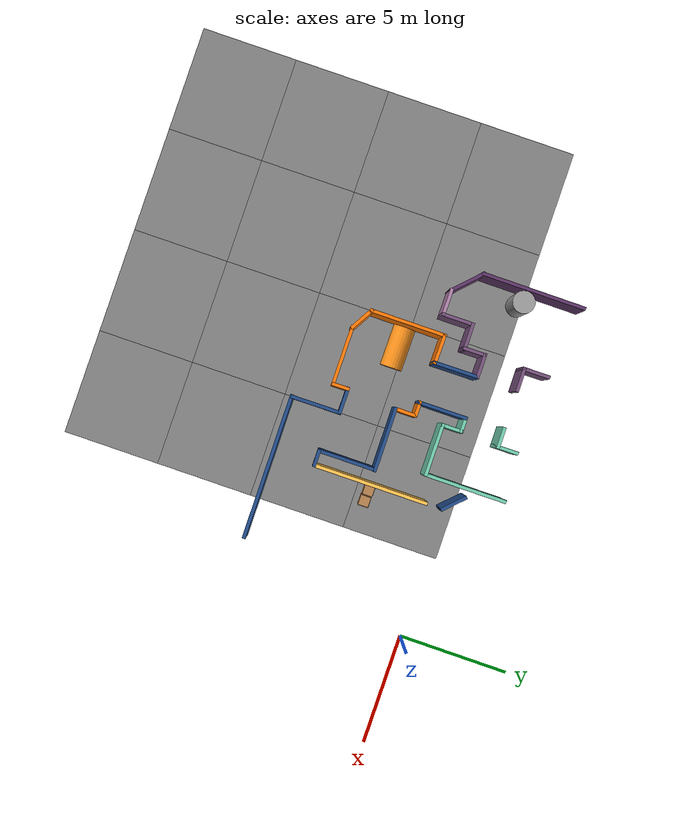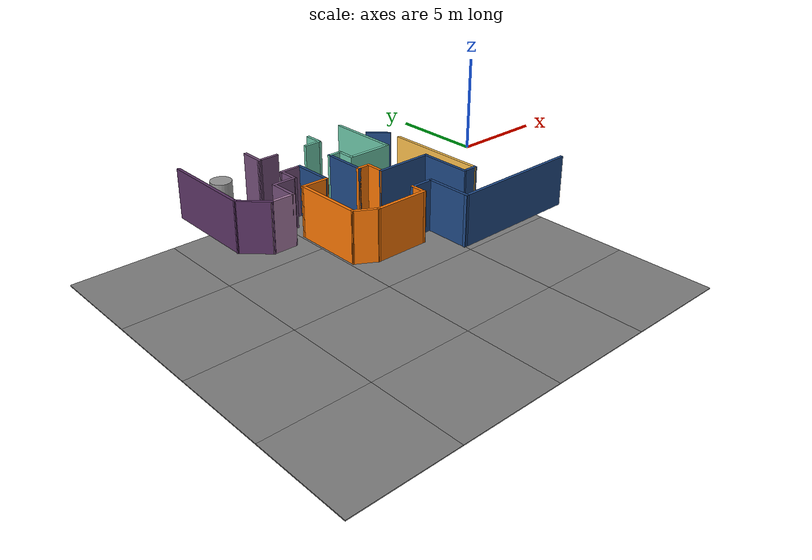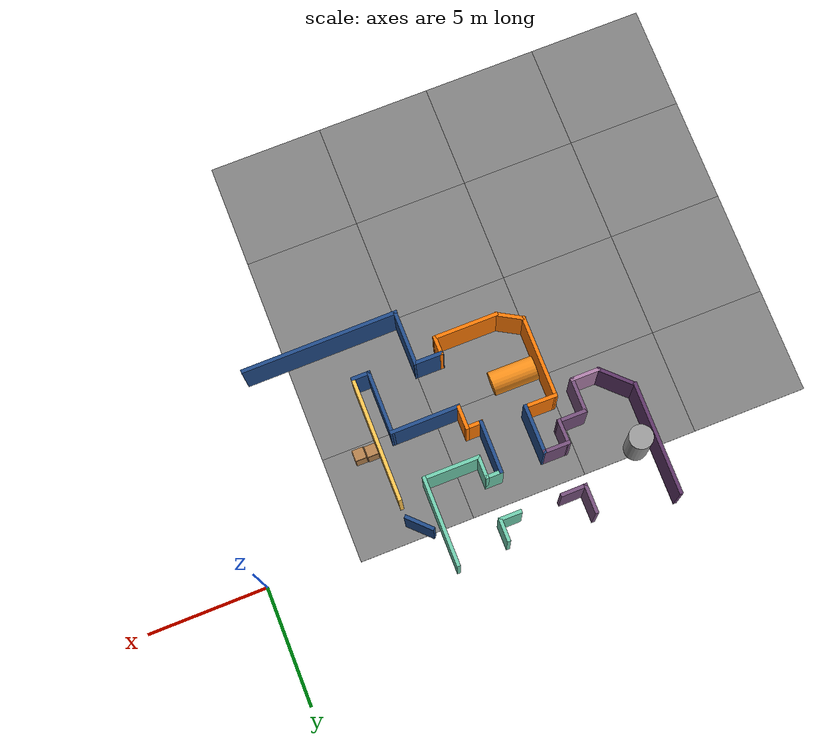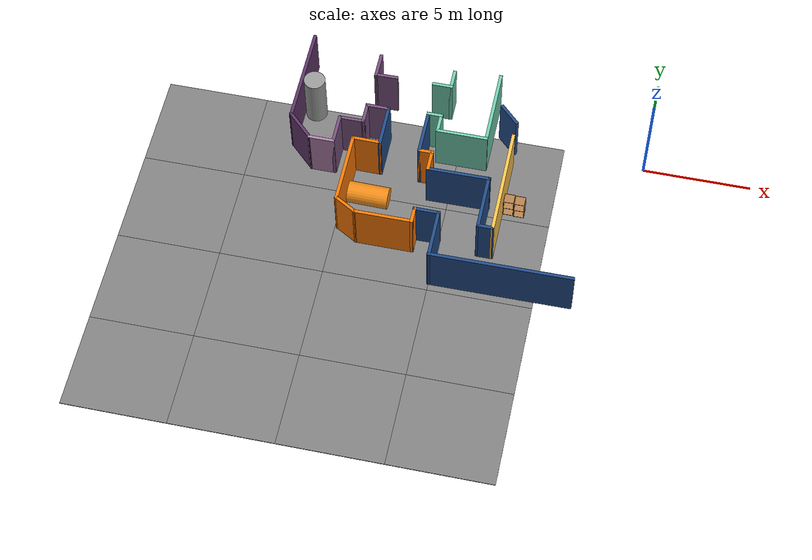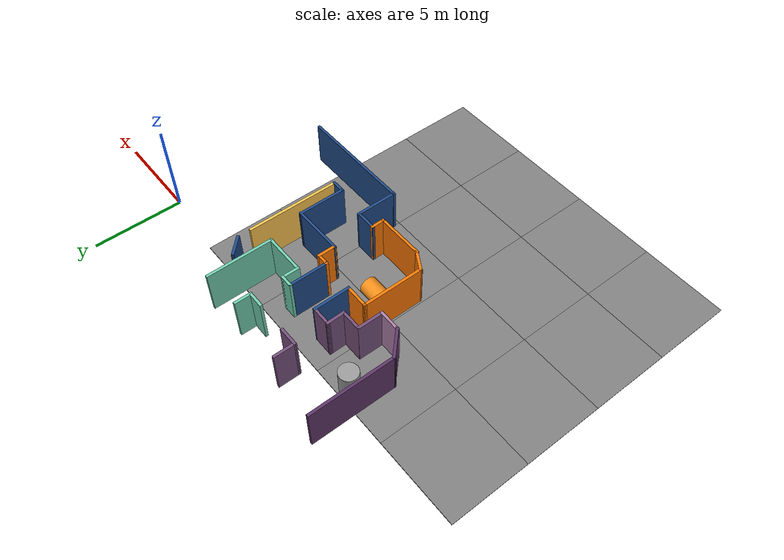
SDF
<sdf version="1.7">
 <world name="default">
  <model name="among_us_world">
   <pose>0.133216 -0.12311 0 0 -0 0</pose>
   <link name="Wall_103">
    <collision name="Wall_103_Collision">
     <geometry><box><size>1.25 0.15 2.5</size></box></geometry>
     <pose>0 0 1.25 0 -0 0</pose>
    </collision>
    <visual name="Wall_103_Visual">
     <pose>0 0 1.25 0 -0 0</pose>
     <geometry><box><size>1.25 0.15 2.5</size></box></geometry>
     <material>
      <ambient>0.12549 0.290196 0.529412 1</ambient>
      <diffuse>0.12549 0.290196 0.529412 1</diffuse>
      <specular>0.08 0.08 0.08 1</specular>
      <emissive>0 0 0 1</emissive>
      <pbr><metal><roughness>0.82</roughness><metalness>0</metalness></metal></pbr>
     </material>
     <meta><layer>0</layer></meta>
    </visual>
    <pose>-6.5956 0.241636 0 0 -0 -0.785398</pose>
   </link>
   <link name="Wall_145">
    <collision name="Wall_145_Collision">
     <geometry><box><size>5.25 0.15 2.5</size></box></geometry>
     <pose>0 0 1.25 0 -0 0</pose>
    </collision>
    <visual name="Wall_145_Visual">
     <pose>0 0 1.25 0 -0 0</pose>
     <geometry><box><size>5.25 0.15 2.5</size></box></geometry>
     <material>
      <ambient>1 0.764706 0.305882 1</ambient>
      <diffuse>1 0.764706 0.305882 1</diffuse>
      <specular>0.08 0.08 0.08 1</specular>
      <emissive>0 0 0 1</emissive>
      <pbr><metal><roughness>0.82</roughness><metalness>0</metalness></metal></pbr>
     </material>
     <meta><layer>0</layer></meta>
    </visual>
    <pose>-6.21277 -3.45528 0 0 -0 1.5708</pose>
   </link>
   <link name="Wall_160">
    <collision name="Wall_160_Collision">
     <geometry><box><size>0.797757 0.15 2.5</size></box></geometry>
     <pose>0 0 1.25 0 -0 0</pose>
    </collision>
    <visual name="Wall_160_Visual">
     <pose>0 0 1.25 0 -0 0</pose>
     <geometry><box><size>0.797757 0.15 2.5</size></box></geometry>
     <material>
      <ambient>0.12549 0.290196 0.529412 1</ambient>
      <diffuse>0.12549 0.290196 0.529412 1</diffuse>
      <specular>0.08 0.08 0.08 1</specular>
      <emissive>0 0 0 1</emissive>
      <pbr><metal><roughness>0.82</roughness><metalness>0</metalness></metal></pbr>
     </material>
     <meta><layer>0</layer></meta>
    </visual>
    <pose>-6.53682 -6.00509 0 0 -0 3.14101</pose>
   </link>
   <link name="Wall_161">
    <collision name="Wall_161_Collision">
     <geometry><box><size>2.70224 0.15 2.5</size></box></geometry>
     <pose>0 0 1.25 0 -0 0</pose>
    </collision>
    <visual name="Wall_161_Visual">
     <pose>0 0 1.25 0 -0 0</pose>
     <geometry><box><size>2.70224 0.15 2.5</size></box></geometry>
     <material>
      <ambient>0.12549 0.290196 0.529412 1</ambient>
      <diffuse>0.12549 0.290196 0.529412 1</diffuse>
      <specular>0.08 0.08 0.08 1</specular>
      <emissive>0 0 0 1</emissive>
      <pbr><metal><roughness>0.82</roughness><metalness>0</metalness></metal></pbr>
     </material>
     <meta><layer>0</layer></meta>
    </visual>
    <pose>-6.87644 -4.72879 0 0 -0 1.5708</pose>
   </link>
   <link name="Wall_162">
    <collision name="Wall_162_Collision">
     <geometry><box><size>2.95229 0.15 2.5</size></box></geometry>
     <pose>0 0 1.25 0 -0 0</pose>
    </collision>
    <visual name="Wall_162_Visual">
     <pose>0 0 1.25 0 -0 0</pose>
     <geometry><box><size>2.95229 0.15 2.5</size></box></geometry>
     <material>
      <ambient>0.12549 0.290196 0.529412 1</ambient>
      <diffuse>0.12549 0.290196 0.529412 1</diffuse>
      <specular>0.08 0.08 0.08 1</specular>
      <emissive>0 0 0 1</emissive>
      <pbr><metal><roughness>0.82</roughness><metalness>0</metalness></metal></pbr>
     </material>
     <meta><layer>0</layer></meta>
    </visual>
    <pose>-8.262 -3.46044 0 0 -0 -3.13604</pose>
   </link>
   <link name="Wall_163">
    <collision name="Wall_163_Collision">
     <geometry><box><size>1.04776 0.15 2.5</size></box></geometry>
     <pose>0 0 1.25 0 -0 0</pose>
    </collision>
    <visual name="Wall_163_Visual">
     <pose>0 0 1.25 0 -0 0</pose>
     <geometry><box><size>1.04776 0.15 2.5</size></box></geometry>
     <material>
      <ambient>0.996078 0.47451 0.0196078 1</ambient>
      <diffuse>0.996078 0.47451 0.0196078 1</diffuse>
      <specular>0.08 0.08 0.08 1</specular>
      <emissive>0 0 0 1</emissive>
      <pbr><metal><roughness>0.82</roughness><metalness>0</metalness></metal></pbr>
     </material>
     <meta><layer>0</layer></meta>
    </visual>
    <pose>-9.66312 -3.00378 0 0 -0 1.5708</pose>
   </link>
   <link name="Wall_164">
    <collision name="Wall_164_Collision">
     <geometry><box><size>0.75 0.15 2.5</size></box></geometry>
     <pose>0 0 1.25 0 -0 0</pose>
    </collision>
    <visual name="Wall_164_Visual">
     <pose>0 0 1.25 0 -0 0</pose>
     <geometry><box><size>0.75 0.15 2.5</size></box></geometry>
     <material>
      <ambient>0.996078 0.47451 0.0196078 1</ambient>
      <diffuse>0.996078 0.47451 0.0196078 1</diffuse>
      <specular>0.08 0.08 0.08 1</specular>
      <emissive>0 0 0 1</emissive>
      <pbr><metal><roughness>0.82</roughness><metalness>0</metalness></metal></pbr>
     </material>
     <meta><layer>0</layer></meta>
    </visual>
    <pose>-9.96312 -2.55491 0 0 -0 3.14159</pose>
   </link>
   <link name="Wall_165">
    <collision name="Wall_165_Collision">
     <geometry><box><size>2.25 0.15 2.5</size></box></geometry>
     <pose>0 0 1.25 0 -0 0</pose>
    </collision>
    <visual name="Wall_165_Visual">
     <pose>0 0 1.25 0 -0 0</pose>
     <geometry><box><size>2.25 0.15 2.5</size></box></geometry>
     <material>
      <ambient>0.12549 0.290196 0.529412 1</ambient>
      <diffuse>0.12549 0.290196 0.529412 1</diffuse>
      <specular>0.08 0.08 0.08 1</specular>
      <emissive>0 0 0 1</emissive>
      <pbr><metal><roughness>0.82</roughness><metalness>0</metalness></metal></pbr>
     </material>
     <meta><layer>0</layer></meta>
    </visual>
    <pose>-10.2631 -1.50491 0 0 -0 1.5708</pose>
   </link>
   <link name="Wall_166">
    <collision name="Wall_166_Collision">
     <geometry><box><size>0.75 0.15 2.5</size></box></geometry>
     <pose>0 0 1.25 0 -0 0</pose>
    </collision>
    <visual name="Wall_166_Visual">
     <pose>0 0 1.25 0 -0 0</pose>
     <geometry><box><size>0.75 0.15 2.5</size></box></geometry>
     <material>
      <ambient>0.435294 0.796078 0.67451 1</ambient>
      <diffuse>0.435294 0.796078 0.67451 1</diffuse>
      <specular>0.08 0.08 0.08 1</specular>
      <emissive>0 0 0 1</emissive>
      <pbr><metal><roughness>0.82</roughness><metalness>0</metalness></metal></pbr>
     </material>
     <meta><layer>0</layer></meta>
    </visual>
    <pose>-9.96312 -0.454906 0 0 -0 0</pose>
   </link>
   <link name="Wall_167">
    <collision name="Wall_167_Collision">
     <geometry><box><size>1 0.15 2.5</size></box></geometry>
     <pose>0 0 1.25 0 -0 0</pose>
    </collision>
    <visual name="Wall_167_Visual">
     <pose>0 0 1.25 0 -0 0</pose>
     <geometry><box><size>1 0.15 2.5</size></box></geometry>
     <material>
      <ambient>0.435294 0.796078 0.67451 1</ambient>
      <diffuse>0.435294 0.796078 0.67451 1</diffuse>
      <specular>0.08 0.08 0.08 1</specular>
      <emissive>0 0 0 1</emissive>
      <pbr><metal><roughness>0.82</roughness><metalness>0</metalness></metal></pbr>
     </material>
     <meta><layer>0</layer></meta>
    </visual>
    <pose>-9.66312 -0.879906 0 0 -0 -1.5708</pose>
   </link>
   <link name="Wall_168">
    <collision name="Wall_168_Collision">
     <geometry><box><size>2.40666 0.15 2.5</size></box></geometry>
     <pose>0 0 1.25 0 -0 0</pose>
    </collision>
    <visual name="Wall_168_Visual">
     <pose>0 0 1.25 0 -0 0</pose>
     <geometry><box><size>2.40666 0.15 2.5</size></box></geometry>
     <material>
      <ambient>0.435294 0.796078 0.67451 1</ambient>
      <diffuse>0.435294 0.796078 0.67451 1</diffuse>
      <specular>0.08 0.08 0.08 1</specular>
      <emissive>0 0 0 1</emissive>
      <pbr><metal><roughness>0.82</roughness><metalness>0</metalness></metal></pbr>
     </material>
     <meta><layer>0</layer></meta>
    </visual>
    <pose>-8.53479 -1.30491 0 0 -0 0</pose>
   </link>
   <link name="Wall_169">
    <collision name="Wall_169_Collision">
     <geometry><box><size>3.75 0.15 2.5</size></box></geometry>
     <pose>0 0 1.25 0 -0 0</pose>
    </collision>
    <visual name="Wall_169_Visual">
     <pose>0 0 1.25 0 -0 0</pose>
     <geometry><box><size>3.75 0.15 2.5</size></box></geometry>
     <material>
      <ambient>0.435294 0.796078 0.67451 1</ambient>
      <diffuse>0.435294 0.796078 0.67451 1</diffuse>
      <specular>0.08 0.08 0.08 1</specular>
      <emissive>0 0 0 1</emissive>
      <pbr><metal><roughness>0.82</roughness><metalness>0</metalness></metal></pbr>
     </material>
     <meta><layer>0</layer></meta>
    </visual>
    <pose>-7.39091 0.495094 0 0 -0 1.5708</pose>
   </link>
   <link name="Wall_173">
    <collision name="Wall_173_Collision">
     <geometry><box><size>1 0.15 2.5</size></box></geometry>
     <pose>0 0 1.25 0 -0 0</pose>
    </collision>
    <visual name="Wall_173_Visual">
     <pose>0 0 1.25 0 -0 0</pose>
     <geometry><box><size>1 0.15 2.5</size></box></geometry>
     <material>
      <ambient>0.435294 0.796078 0.67451 1</ambient>
      <diffuse>0.435294 0.796078 0.67451 1</diffuse>
      <specular>0.08 0.08 0.08 1</specular>
      <emissive>0 0 0 1</emissive>
      <pbr><metal><roughness>0.82</roughness><metalness>0</metalness></metal></pbr>
     </material>
     <meta><layer>0</layer></meta>
    </visual>
    <pose>-9.54198 1.69332 0 0 -0 -1.5708</pose>
   </link>
   <link name="Wall_174">
    <collision name="Wall_174_Collision">
     <geometry><box><size>0.969112 0.15 2.5</size></box></geometry>
     <pose>0 0 1.25 0 -0 0</pose>
    </collision>
    <visual name="Wall_174_Visual">
     <pose>0 0 1.25 0 -0 0</pose>
     <geometry><box><size>0.969112 0.15 2.5</size></box></geometry>
     <material>
      <ambient>0.435294 0.796078 0.67451 1</ambient>
      <diffuse>0.435294 0.796078 0.67451 1</diffuse>
      <specular>0.08 0.08 0.08 1</specular>
      <emissive>0 0 0 1</emissive>
      <pbr><metal><roughness>0.82</roughness><metalness>0</metalness></metal></pbr>
     </material>
     <meta><layer>0</layer></meta>
    </visual>
    <pose>-9.95154 1.26832 0 0 -0 -3.14159</pose>
   </link>
   <link name="Wall_208">
    <collision name="Wall_208_Collision">
     <geometry><box><size>1.25 0.15 2.5</size></box></geometry>
     <pose>0 0 1.25 0 -0 0</pose>
    </collision>
    <visual name="Wall_208_Visual">
     <pose>0 0 1.25 0 -0 0</pose>
     <geometry><box><size>1.25 0.15 2.5</size></box></geometry>
     <material>
      <ambient>0.458824 0.313726 0.482353 1</ambient>
      <diffuse>0.458824 0.313726 0.482353 1</diffuse>
      <specular>0.08 0.08 0.08 1</specular>
      <emissive>0 0 0 1</emissive>
      <pbr><metal><roughness>0.82</roughness><metalness>0</metalness></metal></pbr>
     </material>
     <meta><layer>0</layer></meta>
    </visual>
    <pose>-13.1077 1.80265 0 0 -0 -1.57068</pose>
   </link>
   <link name="Wall_209">
    <collision name="Wall_209_Collision">
     <geometry><box><size>1.11978 0.15 2.5</size></box></geometry>
     <pose>0 0 1.25 0 -0 0</pose>
    </collision>
    <visual name="Wall_209_Visual">
     <pose>0 0 1.25 0 -0 0</pose>
     <geometry><box><size>1.11978 0.15 2.5</size></box></geometry>
     <material>
      <ambient>0.458824 0.313726 0.482353 1</ambient>
      <diffuse>0.458824 0.313726 0.482353 1</diffuse>
      <specular>0.08 0.08 0.08 1</specular>
      <emissive>0 0 0 1</emissive>
      <pbr><metal><roughness>0.82</roughness><metalness>0</metalness></metal></pbr>
     </material>
     <meta><layer>0</layer></meta>
    </visual>
    <pose>-12.6228 1.25736 0 0 -0 0.009865</pose>
   </link>
   <link name="Wall_46">
    <collision name="Wall_46_Collision">
     <geometry><box><size>4.75003 0.15 2.5</size></box></geometry>
     <pose>0 0 1.25 0 -0 0</pose>
    </collision>
    <visual name="Wall_46_Visual">
     <pose>0 0 1.25 0 -0 0</pose>
     <geometry><box><size>4.75003 0.15 2.5</size></box></geometry>
     <material>
      <ambient>0.360784 0.207843 0.4 1</ambient>
      <diffuse>0.360784 0.207843 0.4 1</diffuse>
      <specular>0.08 0.08 0.08 1</specular>
      <emissive>0 0 0 1</emissive>
      <pbr><metal><roughness>0.82</roughness><metalness>0</metalness></metal></pbr>
     </material>
     <meta><layer>0</layer></meta>
    </visual>
    <pose>-16.4358 0.555717 0 0 -0 -1.57428</pose>
   </link>
   <link name="Wall_47">
    <collision name="Wall_47_Collision">
     <geometry><box><size>1.7065 0.15 2.5</size></box></geometry>
     <pose>0 0 1.25 0 -0 0</pose>
    </collision>
    <visual name="Wall_47_Visual">
     <pose>0 0 1.25 0 -0 0</pose>
     <geometry><box><size>1.7065 0.15 2.5</size></box></geometry>
     <material>
      <ambient>0.360784 0.207843 0.4 1</ambient>
      <diffuse>0.360784 0.207843 0.4 1</diffuse>
      <specular>0.08 0.08 0.08 1</specular>
      <emissive>0 0 0 1</emissive>
      <pbr><metal><roughness>0.82</roughness><metalness>0</metalness></metal></pbr>
     </material>
     <meta><layer>0</layer></meta>
    </visual>
    <pose>-15.8858 -2.28678 0 0 -0 -0.771315</pose>
   </link>
   <link name="Wall_48">
    <collision name="Wall_48_Collision">
     <geometry><box><size>1.266 0.15 2.5</size></box></geometry>
     <pose>0 0 1.25 0 -0 0</pose>
    </collision>
    <visual name="Wall_48_Visual">
     <pose>0 0 1.25 0 -0 0</pose>
     <geometry><box><size>1.266 0.15 2.5</size></box></geometry>
     <material>
      <ambient>0.678431 0.498039 0.658824 1</ambient>
      <diffuse>0.678431 0.498039 0.658824 1</diffuse>
      <specular>0.08 0.08 0.08 1</specular>
      <emissive>0 0 0 1</emissive>
      <pbr><metal><roughness>0.82</roughness><metalness>0</metalness></metal></pbr>
     </material>
     <meta><layer>0</layer></meta>
    </visual>
    <pose>-14.7698 -2.82928 0 0 -0 0</pose>
   </link>
   <link name="Wall_49">
    <collision name="Wall_49_Collision">
     <geometry><box><size>1.5 0.15 2.5</size></box></geometry>
     <pose>0 0 1.25 0 -0 0</pose>
    </collision>
    <visual name="Wall_49_Visual">
     <pose>0 0 1.25 0 -0 0</pose>
     <geometry><box><size>1.5 0.15 2.5</size></box></geometry>
     <material>
      <ambient>0.458824 0.313726 0.482353 1</ambient>
      <diffuse>0.458824 0.313726 0.482353 1</diffuse>
      <specular>0.08 0.08 0.08 1</specular>
      <emissive>0 0 0 1</emissive>
      <pbr><metal><roughness>0.82</roughness><metalness>0</metalness></metal></pbr>
     </material>
     <meta><layer>0</layer></meta>
    </visual>
    <pose>-14.2118 -2.15428 0 0 -0 1.5708</pose>
   </link>
   <link name="Wall_50">
    <collision name="Wall_50_Collision">
     <geometry><box><size>1.25 0.15 2.5</size></box></geometry>
     <pose>0 0 1.25 0 -0 0</pose>
    </collision>
    <visual name="Wall_50_Visual">
     <pose>0 0 1.25 0 -0 0</pose>
     <geometry><box><size>1.25 0.15 2.5</size></box></geometry>
     <material>
      <ambient>0.458824 0.313726 0.482353 1</ambient>
      <diffuse>0.458824 0.313726 0.482353 1</diffuse>
      <specular>0.08 0.08 0.08 1</specular>
      <emissive>0 0 0 1</emissive>
      <pbr><metal><roughness>0.82</roughness><metalness>0</metalness></metal></pbr>
     </material>
     <meta><layer>0</layer></meta>
    </visual>
    <pose>-13.6618 -1.47928 0 0 -0 0</pose>
   </link>
   <link name="Wall_51">
    <collision name="Wall_51_Collision">
     <geometry><box><size>1.07621 0.15 2.5</size></box></geometry>
     <pose>0 0 1.25 0 -0 0</pose>
    </collision>
    <visual name="Wall_51_Visual">
     <pose>0 0 1.25 0 -0 0</pose>
     <geometry><box><size>1.07621 0.15 2.5</size></box></geometry>
     <material>
      <ambient>0.458824 0.313726 0.482353 1</ambient>
      <diffuse>0.458824 0.313726 0.482353 1</diffuse>
      <specular>0.08 0.08 0.08 1</specular>
      <emissive>0 0 0 1</emissive>
      <pbr><metal><roughness>0.82</roughness><metalness>0</metalness></metal></pbr>
     </material>
     <meta><layer>0</layer></meta>
    </visual>
    <pose>-13.1188 -1.01578 0 0 -0 1.5859</pose>
   </link>
   <link name="Wall_52">
    <collision name="Wall_52_Collision">
     <geometry><box><size>1.1411 0.15 2.5</size></box></geometry>
     <pose>0 0 1.25 0 -0 0</pose>
    </collision>
    <visual name="Wall_52_Visual">
     <pose>0 0 1.25 0 -0 0</pose>
     <geometry><box><size>1.1411 0.15 2.5</size></box></geometry>
     <material>
      <ambient>0.458824 0.313726 0.482353 1</ambient>
      <diffuse>0.458824 0.313726 0.482353 1</diffuse>
      <specular>0.08 0.08 0.08 1</specular>
      <emissive>0 0 0 1</emissive>
      <pbr><metal><roughness>0.82</roughness><metalness>0</metalness></metal></pbr>
     </material>
     <meta><layer>0</layer></meta>
    </visual>
    <pose>-12.6302 -0.553561 0 0 -0 -0.00258</pose>
   </link>
   <link name="Wall_53">
    <collision name="Wall_53_Collision">
     <geometry><box><size>2.08956 0.15 2.5</size></box></geometry>
     <pose>0 0 1.25 0 -0 0</pose>
    </collision>
    <visual name="Wall_53_Visual">
     <pose>0 0 1.25 0 -0 0</pose>
     <geometry><box><size>2.08956 0.15 2.5</size></box></geometry>
     <material>
      <ambient>0.12549 0.290196 0.529412 1</ambient>
      <diffuse>0.12549 0.290196 0.529412 1</diffuse>
      <specular>0.08 0.08 0.08 1</specular>
      <emissive>0 0 0 1</emissive>
      <pbr><metal><roughness>0.82</roughness><metalness>0</metalness></metal></pbr>
     </material>
     <meta><layer>0</layer></meta>
    </visual>
    <pose>-12.1122 -1.5246 0 0 -0 -1.56365</pose>
   </link>
   <link name="Wall_54">
    <collision name="Wall_54_Collision">
     <geometry><box><size>1.3912 0.15 2.5</size></box></geometry>
     <pose>0 0 1.25 0 -0 0</pose>
    </collision>
    <visual name="Wall_54_Visual">
     <pose>0 0 1.25 0 -0 0</pose>
     <geometry><box><size>1.3912 0.15 2.5</size></box></geometry>
     <material>
      <ambient>0.996078 0.47451 0.0196078 1</ambient>
      <diffuse>0.996078 0.47451 0.0196078 1</diffuse>
      <specular>0.08 0.08 0.08 1</specular>
      <emissive>0 0 0 1</emissive>
      <pbr><metal><roughness>0.82</roughness><metalness>0</metalness></metal></pbr>
     </material>
     <meta><layer>0</layer></meta>
    </visual>
    <pose>-12.7414 -2.48657 0 0 -0 3.12906</pose>
   </link>
   <link name="Wall_55">
    <collision name="Wall_55_Collision">
     <geometry><box><size>3.5 0.15 2.5</size></box></geometry>
     <pose>0 0 1.25 0 -0 0</pose>
    </collision>
    <visual name="Wall_55_Visual">
     <pose>0 0 1.25 0 -0 0</pose>
     <geometry><box><size>3.5 0.15 2.5</size></box></geometry>
     <material>
      <ambient>0.996078 0.47451 0.0196078 1</ambient>
      <diffuse>0.996078 0.47451 0.0196078 1</diffuse>
      <specular>0.08 0.08 0.08 1</specular>
      <emissive>0 0 0 1</emissive>
      <pbr><metal><roughness>0.82</roughness><metalness>0</metalness></metal></pbr>
     </material>
     <meta><layer>0</layer></meta>
    </visual>
    <pose>-13.3619 -4.15379 0 0 -0 -1.5708</pose>
   </link>
   <link name="Wall_56">
    <collision name="Wall_56_Collision">
     <geometry><box><size>1.25 0.15 2.5</size></box></geometry>
     <pose>0 0 1.25 0 -0 0</pose>
    </collision>
    <visual name="Wall_56_Visual">
     <pose>0 0 1.25 0 -0 0</pose>
     <geometry><box><size>1.25 0.15 2.5</size></box></geometry>
     <material>
      <ambient>0.996078 0.47451 0.0196078 1</ambient>
      <diffuse>0.996078 0.47451 0.0196078 1</diffuse>
      <specular>0.08 0.08 0.08 1</specular>
      <emissive>0 0 0 1</emissive>
      <pbr><metal><roughness>0.82</roughness><metalness>0</metalness></metal></pbr>
     </material>
     <meta><layer>0</layer></meta>
    </visual>
    <pose>-12.8856 -6.10379 0 0 -0 -0.523599</pose>
   </link>
   <link name="Wall_57">
    <collision name="Wall_57_Collision">
     <geometry><box><size>2.75 0.15 2.5</size></box></geometry>
     <pose>0 0 1.25 0 -0 0</pose>
    </collision>
    <visual name="Wall_57_Visual">
     <pose>0 0 1.25 0 -0 0</pose>
     <geometry><box><size>2.75 0.15 2.5</size></box></geometry>
     <material>
      <ambient>0.996078 0.47451 0.0196078 1</ambient>
      <diffuse>0.996078 0.47451 0.0196078 1</diffuse>
      <specular>0.08 0.08 0.08 1</specular>
      <emissive>0 0 0 1</emissive>
      <pbr><metal><roughness>0.82</roughness><metalness>0</metalness></metal></pbr>
     </material>
     <meta><layer>0</layer></meta>
    </visual>
    <pose>-11.1093 -6.37879 0 0 -0 0</pose>
   </link>
   <link name="Wall_58">
    <collision name="Wall_58_Collision">
     <geometry><box><size>0.828826 0.15 2.5</size></box></geometry>
     <pose>0 0 1.25 0 -0 0</pose>
    </collision>
    <visual name="Wall_58_Visual">
     <pose>0 0 1.25 0 -0 0</pose>
     <geometry><box><size>0.828826 0.15 2.5</size></box></geometry>
     <material>
      <ambient>0.996078 0.47451 0.0196078 1</ambient>
      <diffuse>0.996078 0.47451 0.0196078 1</diffuse>
      <specular>0.08 0.08 0.08 1</specular>
      <emissive>0 0 0 1</emissive>
      <pbr><metal><roughness>0.82</roughness><metalness>0</metalness></metal></pbr>
     </material>
     <meta><layer>0</layer></meta>
    </visual>
    <pose>-9.81221 -6.03984 0 0 -0 1.57942</pose>
   </link>
   <link name="Wall_59">
    <collision name="Wall_59_Collision">
     <geometry><box><size>1.25 0.15 2.5</size></box></geometry>
     <pose>0 0 1.25 0 -0 0</pose>
    </collision>
    <visual name="Wall_59_Visual">
     <pose>0 0 1.25 0 -0 0</pose>
     <geometry><box><size>1.25 0.15 2.5</size></box></geometry>
     <material>
      <ambient>0.12549 0.290196 0.529412 1</ambient>
      <diffuse>0.12549 0.290196 0.529412 1</diffuse>
      <specular>0.08 0.08 0.08 1</specular>
      <emissive>0 0 0 1</emissive>
      <pbr><metal><roughness>0.82</roughness><metalness>0</metalness></metal></pbr>
     </material>
     <meta><layer>0</layer></meta>
    </visual>
    <pose>-9.27098 -5.70088 0 0 -0 0</pose>
   </link>
   <link name="Wall_60">
    <collision name="Wall_60_Collision">
     <geometry><box><size>2.3556 0.15 2.5</size></box></geometry>
     <pose>0 0 1.25 0 -0 0</pose>
    </collision>
    <visual name="Wall_60_Visual">
     <pose>0 0 1.25 0 -0 0</pose>
     <geometry><box><size>2.3556 0.15 2.5</size></box></geometry>
     <material>
      <ambient>0.12549 0.290196 0.529412 1</ambient>
      <diffuse>0.12549 0.290196 0.529412 1</diffuse>
      <specular>0.08 0.08 0.08 1</specular>
      <emissive>0 0 0 1</emissive>
      <pbr><metal><roughness>0.82</roughness><metalness>0</metalness></metal></pbr>
     </material>
     <meta><layer>0</layer></meta>
    </visual>
    <pose>-8.71756 -6.80367 0 0 -0 -1.56769</pose>
   </link>
   <link name="Wall_61">
    <collision name="Wall_61_Collision">
     <geometry><box><size>6.57551 0.15 2.5</size></box></geometry>
     <pose>0 0 1.25 0 -0 0</pose>
    </collision>
    <visual name="Wall_61_Visual">
     <pose>0 0 1.25 0 -0 0</pose>
     <geometry><box><size>6.57551 0.15 2.5</size></box></geometry>
     <material>
      <ambient>0.12549 0.290196 0.529412 1</ambient>
      <diffuse>0.12549 0.290196 0.529412 1</diffuse>
      <specular>0.08 0.08 0.08 1</specular>
      <emissive>0 0 0 1</emissive>
      <pbr><metal><roughness>0.82</roughness><metalness>0</metalness></metal></pbr>
     </material>
     <meta><layer>0</layer></meta>
    </visual>
    <pose>-5.51319 -7.89091 0 0 -0 0.004842</pose>
   </link>
   <static>1</static>
  </model>
  <model name="cabinet_clone">
   <static>1</static>
   <link name="cabinet_bottom_plate">
    <inertial>
     <pose>0 0 -1 0 -0 0</pose>
     <inertia><ixx>2.05</ixx><ixy>0</ixy><ixz>0</ixz><iyy>2.05</iyy><iyz>0</iyz><izz>2.05</izz></inertia>
     <mass>25</mass>
    </inertial>
    <collision name="cabinet_bottom_plate_geom">
     <pose>0 0 0.01 0 -0 0</pose>
     <geometry><box><size>0.45 0.45 0.02</size></box></geometry>
    </collision>
    <visual name="cabinet_bottom_plate_geom_visual">
     <pose>0 0 0.01 0 -0 0</pose>
     <geometry><box><size>0.45 0.45 0.02</size></box></geometry>
     <material>
      <script><uri>file://media/materials/scripts/gazebo.material</uri><name>Gazebo/Wood</name></script>
      <ambient>0.55 0.34 0.16 1</ambient>
      <diffuse>0.55 0.34 0.16 1</diffuse>
      <specular>0.08 0.08 0.08 1</specular>
      <emissive>0 0 0 1</emissive>
     </material>
    </visual>
    <collision name="cabinet_bottom_plate_geom_cabinet_back_plate">
     <pose>0.235 0 0.51 0 -0 0</pose>
     <geometry><box><size>0.02 0.45 1.02</size></box></geometry>
    </collision>
    <visual name="cabinet_bottom_plate_geom_cabinet_back_plate_visual">
     <pose>0.235 0 0.51 0 -0 0</pose>
     <geometry><box><size>0.02 0.45 1.02</size></box></geometry>
     <material>
      <script><uri>file://media/materials/scripts/gazebo.material</uri><name>Gazebo/Wood</name></script>
      <ambient>0.55 0.34 0.16 1</ambient>
      <diffuse>0.55 0.34 0.16 1</diffuse>
      <specular>0.08 0.08 0.08 1</specular>
      <emissive>0 0 0 1</emissive>
     </material>
    </visual>
    <collision name="cabinet_bottom_plate_geom_cabinet_left_plate">
     <pose>0 0.235 0.51 0 -0 0</pose>
     <geometry><box><size>0.45 0.02 1.02</size></box></geometry>
    </collision>
    <visual name="cabinet_bottom_plate_geom_cabinet_left_plate_visual">
     <pose>0 0.235 0.51 0 -0 0</pose>
     <geometry><box><size>0.45 0.02 1.02</size></box></geometry>
     <material>
      <script><uri>file://media/materials/scripts/gazebo.material</uri><name>Gazebo/Wood</name></script>
      <ambient>0.55 0.34 0.16 1</ambient>
      <diffuse>0.55 0.34 0.16 1</diffuse>
      <specular>0.08 0.08 0.08 1</specular>
      <emissive>0 0 0 1</emissive>
     </material>
    </visual>
    <collision name="cabinet_bottom_plate_geom_cabinet_middle_plate">
     <pose>0 0 0.51 0 -0 0</pose>
     <geometry><box><size>0.45 0.45 0.02</size></box></geometry>
    </collision>
    <visual name="cabinet_bottom_plate_geom_cabinet_middle_plate_visual">
     <pose>0 0 0.51 0 -0 0</pose>
     <geometry><box><size>0.45 0.45 0.02</size></box></geometry>
     <material>
      <script><uri>file://media/materials/scripts/gazebo.material</uri><name>Gazebo/Wood</name></script>
      <ambient>0.55 0.34 0.16 1</ambient>
      <diffuse>0.55 0.34 0.16 1</diffuse>
      <specular>0.08 0.08 0.08 1</specular>
      <emissive>0 0 0 1</emissive>
     </material>
    </visual>
    <collision name="cabinet_bottom_plate_geom_cabinet_right_plate">
     <pose>0 -0.235 0.51 0 -0 0</pose>
     <geometry><box><size>0.45 0.02 1.02</size></box></geometry>
    </collision>
    <visual name="cabinet_bottom_plate_geom_cabinet_right_plate_visual">
     <pose>0 -0.235 0.51 0 -0 0</pose>
     <geometry><box><size>0.45 0.02 1.02</size></box></geometry>
     <material>
      <script><uri>file://media/materials/scripts/gazebo.material</uri><name>Gazebo/Wood</name></script>
      <ambient>0.55 0.34 0.16 1</ambient>
      <diffuse>0.55 0.34 0.16 1</diffuse>
      <specular>0.08 0.08 0.08 1</specular>
      <emissive>0 0 0 1</emissive>
     </material>
    </visual>
    <collision name="cabinet_bottom_plate_geom_cabinet_top_plate">
     <pose>0 0 1.01 0 -0 0</pose>
     <geometry><box><size>0.45 0.45 0.02</size></box></geometry>
    </collision>
    <visual name="cabinet_bottom_plate_geom_cabinet_top_plate_visual">
     <pose>0 0 1.01 0 -0 0</pose>
     <geometry><box><size>0.45 0.45 0.02</size></box></geometry>
     <material>
      <script><uri>file://media/materials/scripts/gazebo.material</uri><name>Gazebo/Wood</name></script>
      <ambient>0.55 0.34 0.16 1</ambient>
      <diffuse>0.55 0.34 0.16 1</diffuse>
      <specular>0.08 0.08 0.08 1</specular>
      <emissive>0 0 0 1</emissive>
     </material>
    </visual>
   </link>
   <pose>-5.25916 -3.50994 0 0 -0 1.57</pose>
  </model>
  <model name="cabinet_clone_0_clone">
   <static>1</static>
   <link name="cabinet_bottom_plate">
    <inertial>
     <pose>0 0 -1 0 -0 0</pose>
     <inertia><ixx>2.05</ixx><ixy>0</ixy><ixz>0</ixz><iyy>2.05</iyy><iyz>0</iyz><izz>2.05</izz></inertia>
     <mass>25</mass>
    </inertial>
    <collision name="cabinet_bottom_plate_geom">
     <pose>0 0 0.01 0 -0 0</pose>
     <geometry><box><size>0.45 0.45 0.02</size></box></geometry>
    </collision>
    <visual name="cabinet_bottom_plate_geom_visual">
     <pose>0 0 0.01 0 -0 0</pose>
     <geometry><box><size>0.45 0.45 0.02</size></box></geometry>
     <material>
      <script><uri>file://media/materials/scripts/gazebo.material</uri><name>Gazebo/Wood</name></script>
      <ambient>0.55 0.34 0.16 1</ambient>
      <diffuse>0.55 0.34 0.16 1</diffuse>
      <specular>0.08 0.08 0.08 1</specular>
      <emissive>0 0 0 1</emissive>
     </material>
    </visual>
    <collision name="cabinet_bottom_plate_geom_cabinet_back_plate">
     <pose>0.235 0 0.51 0 -0 0</pose>
     <geometry><box><size>0.02 0.45 1.02</size></box></geometry>
    </collision>
    <visual name="cabinet_bottom_plate_geom_cabinet_back_plate_visual">
     <pose>0.235 0 0.51 0 -0 0</pose>
     <geometry><box><size>0.02 0.45 1.02</size></box></geometry>
     <material>
      <script><uri>file://media/materials/scripts/gazebo.material</uri><name>Gazebo/Wood</name></script>
      <ambient>0.55 0.34 0.16 1</ambient>
      <diffuse>0.55 0.34 0.16 1</diffuse>
      <specular>0.08 0.08 0.08 1</specular>
      <emissive>0 0 0 1</emissive>
     </material>
    </visual>
    <collision name="cabinet_bottom_plate_geom_cabinet_left_plate">
     <pose>0 0.235 0.51 0 -0 0</pose>
     <geometry><box><size>0.45 0.02 1.02</size></box></geometry>
    </collision>
    <visual name="cabinet_bottom_plate_geom_cabinet_left_plate_visual">
     <pose>0 0.235 0.51 0 -0 0</pose>
     <geometry><box><size>0.45 0.02 1.02</size></box></geometry>
     <material>
      <script><uri>file://media/materials/scripts/gazebo.material</uri><name>Gazebo/Wood</name></script>
      <ambient>0.55 0.34 0.16 1</ambient>
      <diffuse>0.55 0.34 0.16 1</diffuse>
      <specular>0.08 0.08 0.08 1</specular>
      <emissive>0 0 0 1</emissive>
     </material>
    </visual>
    <collision name="cabinet_bottom_plate_geom_cabinet_middle_plate">
     <pose>0 0 0.51 0 -0 0</pose>
     <geometry><box><size>0.45 0.45 0.02</size></box></geometry>
    </collision>
    <visual name="cabinet_bottom_plate_geom_cabinet_middle_plate_visual">
     <pose>0 0 0.51 0 -0 0</pose>
     <geometry><box><size>0.45 0.45 0.02</size></box></geometry>
     <material>
      <script><uri>file://media/materials/scripts/gazebo.material</uri><name>Gazebo/Wood</name></script>
      <ambient>0.55 0.34 0.16 1</ambient>
      <diffuse>0.55 0.34 0.16 1</diffuse>
      <specular>0.08 0.08 0.08 1</specular>
      <emissive>0 0 0 1</emissive>
     </material>
    </visual>
    <collision name="cabinet_bottom_plate_geom_cabinet_right_plate">
     <pose>0 -0.235 0.51 0 -0 0</pose>
     <geometry><box><size>0.45 0.02 1.02</size></box></geometry>
    </collision>
    <visual name="cabinet_bottom_plate_geom_cabinet_right_plate_visual">
     <pose>0 -0.235 0.51 0 -0 0</pose>
     <geometry><box><size>0.45 0.02 1.02</size></box></geometry>
     <material>
      <script><uri>file://media/materials/scripts/gazebo.material</uri><name>Gazebo/Wood</name></script>
      <ambient>0.55 0.34 0.16 1</ambient>
      <diffuse>0.55 0.34 0.16 1</diffuse>
      <specular>0.08 0.08 0.08 1</specular>
      <emissive>0 0 0 1</emissive>
     </material>
    </visual>
    <collision name="cabinet_bottom_plate_geom_cabinet_top_plate">
     <pose>0 0 1.01 0 -0 0</pose>
     <geometry><box><size>0.45 0.45 0.02</size></box></geometry>
    </collision>
    <visual name="cabinet_bottom_plate_geom_cabinet_top_plate_visual">
     <pose>0 0 1.01 0 -0 0</pose>
     <geometry><box><size>0.45 0.45 0.02</size></box></geometry>
     <material>
      <script><uri>file://media/materials/scripts/gazebo.material</uri><name>Gazebo/Wood</name></script>
      <ambient>0.55 0.34 0.16 1</ambient>
      <diffuse>0.55 0.34 0.16 1</diffuse>
      <specular>0.08 0.08 0.08 1</specular>
      <emissive>0 0 0 1</emissive>
     </material>
    </visual>
   </link>
   <pose>-5.75867 -3.48219 0 0 -0 1.57</pose>
  </model>
  <model name="orange_cylinder_clone_clone">
   <link name="link_0">
    <inertial>
     <mass>1</mass>
     <inertia><ixx>0.145833</ixx><ixy>0</ixy><ixz>0</ixz><iyy>0.145833</iyy><iyz>0</iyz><izz>0.125</izz></inertia>
    </inertial>
    <visual name="visual">
     <geometry><cylinder><radius>0.5</radius><length>1.88443</length></cylinder></geometry>
     <material>
      <lighting>1</lighting>
      <script><uri>file://media/materials/scripts/gazebo.material</uri><name>Gazebo/Orange</name></script>
      <shader type="pixel"><normal_map>__default__</normal_map></shader>
      <ambient>1 0.509 0.047 1</ambient>
      <diffuse>1 0.509 0.047 1</diffuse>
      <specular>0.08 0.08 0.08 1</specular>
      <emissive>0 0 0 1</emissive>
     </material>
    </visual>
    <collision name="collision">
     <geometry><cylinder><radius>0.5</radius><length>1.88443</length></cylinder></geometry>
     <surface>
      <friction>
       <ode><mu>1</mu><mu2>1</mu2><fdir1>0 0 0</fdir1><slip1>0</slip1><slip2>0</slip2></ode>
       <torsional>
        <coefficient>1</coefficient>
        <patch_radius>0</patch_radius>
        <surface_radius>0</surface_radius>
        <use_patch_radius>1</use_patch_radius>
        <ode><slip>0</slip></ode>
       </torsional>
      </friction>
      <bounce><restitution_coefficient>0</restitution_coefficient><threshold>1e+06</threshold></bounce>
      <contact>
       <collide_without_contact>0</collide_without_contact>
       <collide_without_contact_bitmask>1</collide_without_contact_bitmask>
       <collide_bitmask>1</collide_bitmask>
       <ode>
        <soft_cfm>0</soft_cfm>
        <soft_erp>0.2</soft_erp>
        <kp>1e+13</kp>
        <kd>1</kd>
        <max_vel>0.01</max_vel>
        <min_depth>0</min_depth>
       </ode>
       <bullet>
        <split_impulse>1</split_impulse>
        <split_impulse_penetration_threshold>-0.01</split_impulse_penetration_threshold>
        <soft_cfm>0</soft_cfm>
        <soft_erp>0.2</soft_erp>
        <kp>1e+13</kp>
        <kd>1</kd>
       </bullet>
      </contact>
     </surface>
    </collision>
   </link>
   <static>0</static>
   <pose>-12.1704 -4.30471 0.589029 -2.05384 1.53534 -2.05993</pose>
  </model>
  <model name="asphalt_tile_00_00">
   <static>1</static>
   <pose>-20.600 -15.000 -0.020 0 -0 0</pose>
   <link name="link">
    <collision name="collision"><geometry><box><size>4.800 4.400 0.040</size></box></geometry></collision>
    <visual name="visual">
     <cast_shadows>0</cast_shadows>
     <geometry><box><size>4.800 4.400 0.040</size></box></geometry>
     <material>
      <ambient>0.5 0.5 0.5 1</ambient>
      <diffuse>0.5 0.5 0.5 1</diffuse>
      <specular>0.2 0.2 0.2 1</specular>
      <emissive>0 0 0 1</emissive>
      <pbr>
       <metal>
        <albedo_map>model://asphalt_plane/materials/textures/tarmac.png</albedo_map>
        <roughness>0.85</roughness>
        <metalness>0</metalness>
       </metal>
      </pbr>
     </material>
    </visual>
   </link>
  </model>
  <model name="asphalt_tile_00_01">
   <static>1</static>
   <pose>-15.800 -15.000 -0.020 0 -0 0</pose>
   <link name="link">
    <collision name="collision"><geometry><box><size>4.800 4.400 0.040</size></box></geometry></collision>
    <visual name="visual">
     <cast_shadows>0</cast_shadows>
     <geometry><box><size>4.800 4.400 0.040</size></box></geometry>
     <material>
      <ambient>0.5 0.5 0.5 1</ambient>
      <diffuse>0.5 0.5 0.5 1</diffuse>
      <specular>0.2 0.2 0.2 1</specular>
      <emissive>0 0 0 1</emissive>
      <pbr>
       <metal>
        <albedo_map>model://asphalt_plane/materials/textures/tarmac.png</albedo_map>
        <roughness>0.85</roughness>
        <metalness>0</metalness>
       </metal>
      </pbr>
     </material>
    </visual>
   </link>
  </model>
  <model name="asphalt_tile_00_02">
   <static>1</static>
   <pose>-11.000 -15.000 -0.020 0 -0 0</pose>
   <link name="link">
    <collision name="collision"><geometry><box><size>4.800 4.400 0.040</size></box></geometry></collision>
    <visual name="visual">
     <cast_shadows>0</cast_shadows>
     <geometry><box><size>4.800 4.400 0.040</size></box></geometry>
     <material>
      <ambient>0.5 0.5 0.5 1</ambient>
      <diffuse>0.5 0.5 0.5 1</diffuse>
      <specular>0.2 0.2 0.2 1</specular>
      <emissive>0 0 0 1</emissive>
      <pbr>
       <metal>
        <albedo_map>model://asphalt_plane/materials/textures/tarmac.png</albedo_map>
        <roughness>0.85</roughness>
        <metalness>0</metalness>
       </metal>
      </pbr>
     </material>
    </visual>
   </link>
  </model>
  <model name="asphalt_tile_00_03">
   <static>1</static>
   <pose>-6.200 -15.000 -0.020 0 -0 0</pose>
   <link name="link">
    <collision name="collision"><geometry><box><size>4.800 4.400 0.040</size></box></geometry></collision>
    <visual name="visual">
     <cast_shadows>0</cast_shadows>
     <geometry><box><size>4.800 4.400 0.040</size></box></geometry>
     <material>
      <ambient>0.5 0.5 0.5 1</ambient>
      <diffuse>0.5 0.5 0.5 1</diffuse>
      <specular>0.2 0.2 0.2 1</specular>
      <emissive>0 0 0 1</emissive>
      <pbr>
       <metal>
        <albedo_map>model://asphalt_plane/materials/textures/tarmac.png</albedo_map>
        <roughness>0.85</roughness>
        <metalness>0</metalness>
       </metal>
      </pbr>
     </material>
    </visual>
   </link>
  </model>
  <model name="asphalt_tile_01_00">
   <static>1</static>
   <pose>-20.600 -10.600 -0.020 0 -0 0</pose>
   <link name="link">
    <collision name="collision"><geometry><box><size>4.800 4.400 0.040</size></box></geometry></collision>
    <visual name="visual">
     <cast_shadows>0</cast_shadows>
     <geometry><box><size>4.800 4.400 0.040</size></box></geometry>
     <material>
      <ambient>0.5 0.5 0.5 1</ambient>
      <diffuse>0.5 0.5 0.5 1</diffuse>
      <specular>0.2 0.2 0.2 1</specular>
      <emissive>0 0 0 1</emissive>
      <pbr>
       <metal>
        <albedo_map>model://asphalt_plane/materials/textures/tarmac.png</albedo_map>
        <roughness>0.85</roughness>
        <metalness>0</metalness>
       </metal>
      </pbr>
     </material>
    </visual>
   </link>
  </model>
  <model name="asphalt_tile_01_01">
   <static>1</static>
   <pose>-15.800 -10.600 -0.020 0 -0 0</pose>
   <link name="link">
    <collision name="collision"><geometry><box><size>4.800 4.400 0.040</size></box></geometry></collision>
    <visual name="visual">
     <cast_shadows>0</cast_shadows>
     <geometry><box><size>4.800 4.400 0.040</size></box></geometry>
     <material>
      <ambient>0.5 0.5 0.5 1</ambient>
      <diffuse>0.5 0.5 0.5 1</diffuse>
      <specular>0.2 0.2 0.2 1</specular>
      <emissive>0 0 0 1</emissive>
      <pbr>
       <metal>
        <albedo_map>model://asphalt_plane/materials/textures/tarmac.png</albedo_map>
        <roughness>0.85</roughness>
        <metalness>0</metalness>
       </metal>
      </pbr>
     </material>
    </visual>
   </link>
  </model>
  <model name="asphalt_tile_01_02">
   <static>1</static>
   <pose>-11.000 -10.600 -0.020 0 -0 0</pose>
   <link name="link">
    <collision name="collision"><geometry><box><size>4.800 4.400 0.040</size></box></geometry></collision>
    <visual name="visual">
     <cast_shadows>0</cast_shadows>
     <geometry><box><size>4.800 4.400 0.040</size></box></geometry>
     <material>
      <ambient>0.5 0.5 0.5 1</ambient>
      <diffuse>0.5 0.5 0.5 1</diffuse>
      <specular>0.2 0.2 0.2 1</specular>
      <emissive>0 0 0 1</emissive>
      <pbr>
       <metal>
        <albedo_map>model://asphalt_plane/materials/textures/tarmac.png</albedo_map>
        <roughness>0.85</roughness>
        <metalness>0</metalness>
       </metal>
      </pbr>
     </material>
    </visual>
   </link>
  </model>
  <model name="asphalt_tile_01_03">
   <static>1</static>
   <pose>-6.200 -10.600 -0.020 0 -0 0</pose>
   <link name="link">
    <collision name="collision"><geometry><box><size>4.800 4.400 0.040</size></box></geometry></collision>
    <visual name="visual">
     <cast_shadows>0</cast_shadows>
     <geometry><box><size>4.800 4.400 0.040</size></box></geometry>
     <material>
      <ambient>0.5 0.5 0.5 1</ambient>
      <diffuse>0.5 0.5 0.5 1</diffuse>
      <specular>0.2 0.2 0.2 1</specular>
      <emissive>0 0 0 1</emissive>
      <pbr>
       <metal>
        <albedo_map>model://asphalt_plane/materials/textures/tarmac.png</albedo_map>
        <roughness>0.85</roughness>
        <metalness>0</metalness>
       </metal>
      </pbr>
     </material>
    </visual>
   </link>
  </model>
  <model name="asphalt_tile_02_00">
   <static>1</static>
   <pose>-20.600 -6.200 -0.020 0 -0 0</pose>
   <link name="link">
    <collision name="collision"><geometry><box><size>4.800 4.400 0.040</size></box></geometry></collision>
    <visual name="visual">
     <cast_shadows>0</cast_shadows>
     <geometry><box><size>4.800 4.400 0.040</size></box></geometry>
     <material>
      <ambient>0.5 0.5 0.5 1</ambient>
      <diffuse>0.5 0.5 0.5 1</diffuse>
      <specular>0.2 0.2 0.2 1</specular>
      <emissive>0 0 0 1</emissive>
      <pbr>
       <metal>
        <albedo_map>model://asphalt_plane/materials/textures/tarmac.png</albedo_map>
        <roughness>0.85</roughness>
        <metalness>0</metalness>
       </metal>
      </pbr>
     </material>
    </visual>
   </link>
  </model>
  <model name="asphalt_tile_02_01">
   <static>1</static>
   <pose>-15.800 -6.200 -0.020 0 -0 0</pose>
   <link name="link">
    <collision name="collision"><geometry><box><size>4.800 4.400 0.040</size></box></geometry></collision>
    <visual name="visual">
     <cast_shadows>0</cast_shadows>
     <geometry><box><size>4.800 4.400 0.040</size></box></geometry>
     <material>
      <ambient>0.5 0.5 0.5 1</ambient>
      <diffuse>0.5 0.5 0.5 1</diffuse>
      <specular>0.2 0.2 0.2 1</specular>
      <emissive>0 0 0 1</emissive>
      <pbr>
       <metal>
        <albedo_map>model://asphalt_plane/materials/textures/tarmac.png</albedo_map>
        <roughness>0.85</roughness>
        <metalness>0</metalness>
       </metal>
      </pbr>
     </material>
    </visual>
   </link>
  </model>
  <model name="asphalt_tile_02_02">
   <static>1</static>
   <pose>-11.000 -6.200 -0.020 0 -0 0</pose>
   <link name="link">
    <collision name="collision"><geometry><box><size>4.800 4.400 0.040</size></box></geometry></collision>
    <visual name="visual">
     <cast_shadows>0</cast_shadows>
     <geometry><box><size>4.800 4.400 0.040</size></box></geometry>
     <material>
      <ambient>0.5 0.5 0.5 1</ambient>
      <diffuse>0.5 0.5 0.5 1</diffuse>
      <specular>0.2 0.2 0.2 1</specular>
      <emissive>0 0 0 1</emissive>
      <pbr>
       <metal>
        <albedo_map>model://asphalt_plane/materials/textures/tarmac.png</albedo_map>
        <roughness>0.85</roughness>
        <metalness>0</metalness>
       </metal>
      </pbr>
     </material>
    </visual>
   </link>
  </model>
  <model name="asphalt_tile_02_03">
   <static>1</static>
   <pose>-6.200 -6.200 -0.020 0 -0 0</pose>
   <link name="link">
    <collision name="collision"><geometry><box><size>4.800 4.400 0.040</size></box></geometry></collision>
    <visual name="visual">
     <cast_shadows>0</cast_shadows>
     <geometry><box><size>4.800 4.400 0.040</size></box></geometry>
     <material>
      <ambient>0.5 0.5 0.5 1</ambient>
      <diffuse>0.5 0.5 0.5 1</diffuse>
      <specular>0.2 0.2 0.2 1</specular>
      <emissive>0 0 0 1</emissive>
      <pbr>
       <metal>
        <albedo_map>model://asphalt_plane/materials/textures/tarmac.png</albedo_map>
        <roughness>0.85</roughness>
        <metalness>0</metalness>
       </metal>
      </pbr>
     </material>
    </visual>
   </link>
  </model>
  <model name="asphalt_tile_03_00">
   <static>1</static>
   <pose>-20.600 -1.800 -0.020 0 -0 0</pose>
   <link name="link">
    <collision name="collision"><geometry><box><size>4.800 4.400 0.040</size></box></geometry></collision>
    <visual name="visual">
     <cast_shadows>0</cast_shadows>
     <geometry><box><size>4.800 4.400 0.040</size></box></geometry>
     <material>
      <ambient>0.5 0.5 0.5 1</ambient>
      <diffuse>0.5 0.5 0.5 1</diffuse>
      <specular>0.2 0.2 0.2 1</specular>
      <emissive>0 0 0 1</emissive>
      <pbr>
       <metal>
        <albedo_map>model://asphalt_plane/materials/textures/tarmac.png</albedo_map>
        <roughness>0.85</roughness>
        <metalness>0</metalness>
       </metal>
      </pbr>
     </material>
    </visual>
   </link>
  </model>
  <model name="asphalt_tile_03_01">
   <static>1</static>
   <pose>-15.800 -1.800 -0.020 0 -0 0</pose>
   <link name="link">
    <collision name="collision"><geometry><box><size>4.800 4.400 0.040</size></box></geometry></collision>
    <visual name="visual">
     <cast_shadows>0</cast_shadows>
     <geometry><box><size>4.800 4.400 0.040</size></box></geometry>
     <material>
      <ambient>0.5 0.5 0.5 1</ambient>
      <diffuse>0.5 0.5 0.5 1</diffuse>
      <specular>0.2 0.2 0.2 1</specular>
      <emissive>0 0 0 1</emissive>
      <pbr>
       <metal>
        <albedo_map>model://asphalt_plane/materials/textures/tarmac.png</albedo_map>
        <roughness>0.85</roughness>
        <metalness>0</metalness>
       </metal>
      </pbr>
     </material>
    </visual>
   </link>
  </model>
  <model name="asphalt_tile_03_02">
   <static>1</static>
   <pose>-11.000 -1.800 -0.020 0 -0 0</pose>
   <link name="link">
    <collision name="collision"><geometry><box><size>4.800 4.400 0.040</size></box></geometry></collision>
    <visual name="visual">
     <cast_shadows>0</cast_shadows>
     <geometry><box><size>4.800 4.400 0.040</size></box></geometry>
     <material>
      <ambient>0.5 0.5 0.5 1</ambient>
      <diffuse>0.5 0.5 0.5 1</diffuse>
      <specular>0.2 0.2 0.2 1</specular>
      <emissive>0 0 0 1</emissive>
      <pbr>
       <metal>
        <albedo_map>model://asphalt_plane/materials/textures/tarmac.png</albedo_map>
        <roughness>0.85</roughness>
        <metalness>0</metalness>
       </metal>
      </pbr>
     </material>
    </visual>
   </link>
  </model>
  <model name="asphalt_tile_03_03">
   <static>1</static>
   <pose>-6.200 -1.800 -0.020 0 -0 0</pose>
   <link name="link">
    <collision name="collision"><geometry><box><size>4.800 4.400 0.040</size></box></geometry></collision>
    <visual name="visual">
     <cast_shadows>0</cast_shadows>
     <geometry><box><size>4.800 4.400 0.040</size></box></geometry>
     <material>
      <ambient>0.5 0.5 0.5 1</ambient>
      <diffuse>0.5 0.5 0.5 1</diffuse>
      <specular>0.2 0.2 0.2 1</specular>
      <emissive>0 0 0 1</emissive>
      <pbr>
       <metal>
        <albedo_map>model://asphalt_plane/materials/textures/tarmac.png</albedo_map>
        <roughness>0.85</roughness>
        <metalness>0</metalness>
       </metal>
      </pbr>
     </material>
    </visual>
   </link>
  </model>
  <model name="unit_cylinder">
   <pose>-15.6985 0.167501 1.29158 0 -0 0.000487</pose>
   <link name="link">
    <inertial>
     <mass>1</mass>
     <inertia><ixx>0.145833</ixx><ixy>0</ixy><ixz>0</ixz><iyy>0.145833</iyy><iyz>0</iyz><izz>0.125</izz></inertia>
    </inertial>
    <collision name="collision">
     <geometry><cylinder><radius>0.5</radius><length>2.56317</length></cylinder></geometry>
    </collision>
    <visual name="visual">
     <geometry><cylinder><radius>0.5</radius><length>2.56317</length></cylinder></geometry>
     <material>
      <script><name>Gazebo/Grey</name><uri>file://media/materials/scripts/gazebo.material</uri></script>
      <ambient>0.55 0.55 0.55 1</ambient>
      <diffuse>0.55 0.55 0.55 1</diffuse>
      <specular>0.08 0.08 0.08 1</specular>
      <emissive>0 0 0 1</emissive>
     </material>
    </visual>
   </link>
  </model>
 </world>
</sdf>
